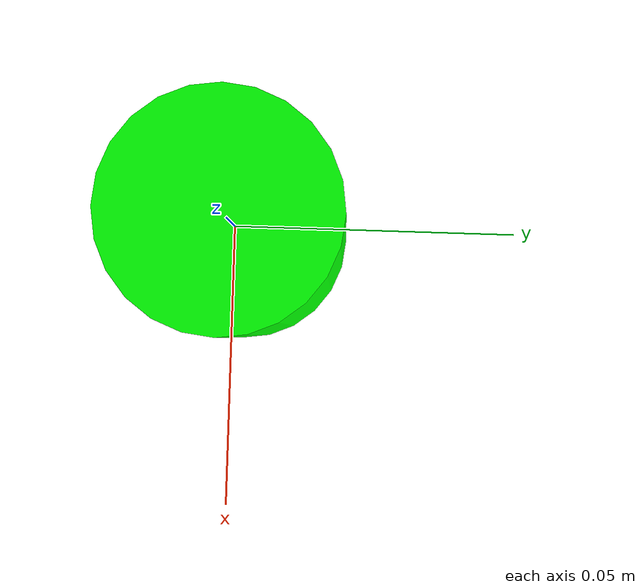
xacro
<?xml version="1.0" encoding="utf-8"?>
<robot xmlns:xacro="http://www.ros.org/wiki/xacro" name="cylinder">

  <xacro:property name="r" value="0.02" />
  <xacro:property name="h" value="0.18" />

  <link name="cylinder_link">
    <visual>
      <geometry>
        <cylinder length="${h}" radius="${r}"/>
      </geometry>
      <material name="green">
        <color rgba="0 1 0 1"/>
      </material>
    </visual>
    <inertial>
      <origin xyz="0 0 0" rpy="0 0 0"/>
      <mass value="0.05"/>
      <inertia ixx="0.001"  ixy="0"  ixz="0" iyy="0.001" iyz="0" izz="0.001" />
    </inertial>
    <collision>
      <origin xyz="0 0 0" rpy="0 0 0"/>
      <geometry>
        <cylinder length="${h}" radius="${r}"/>
      </geometry>
    </collision>
  </link>

  <gazebo reference="cylinder_link">
    <material>Gazebo/Purple</material>
    <dampingFactor>0.005</dampingFactor>
    <kp>1000000</kp>
    <kd>1.0</kd>
    <mu1>100.0</mu1>
    <mu2>100.0</mu2>
    <minDepth>0.001</minDepth>
  </gazebo>
</robot>
